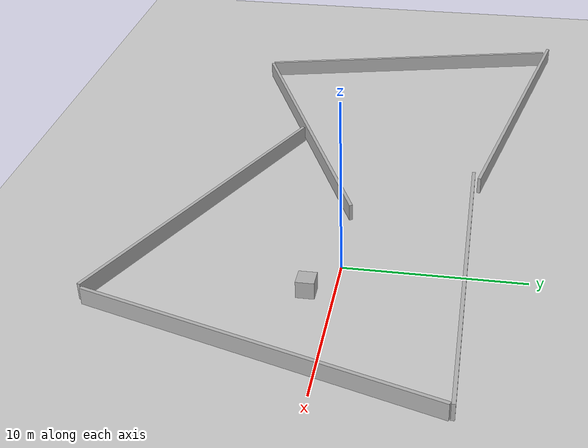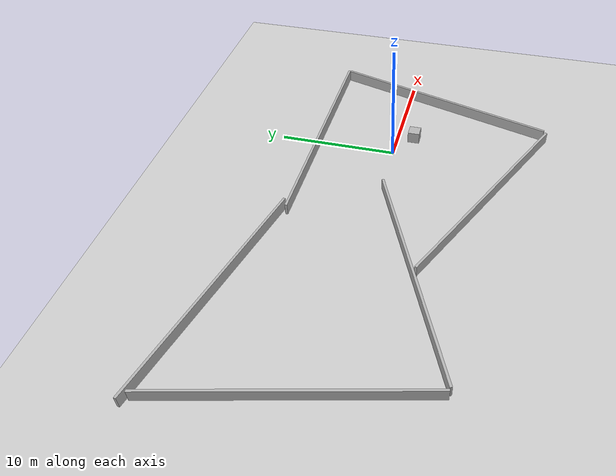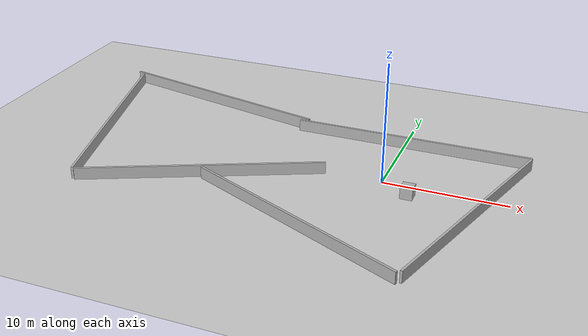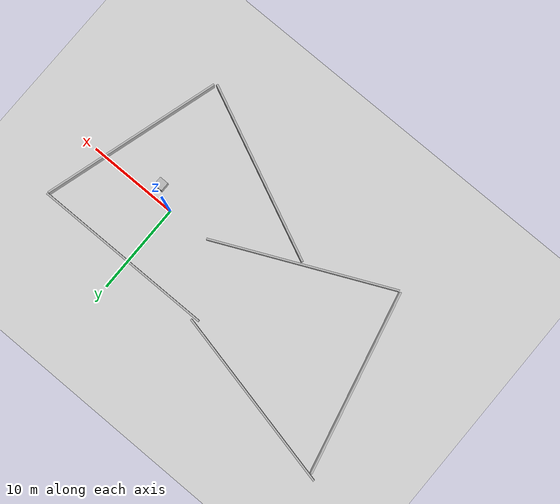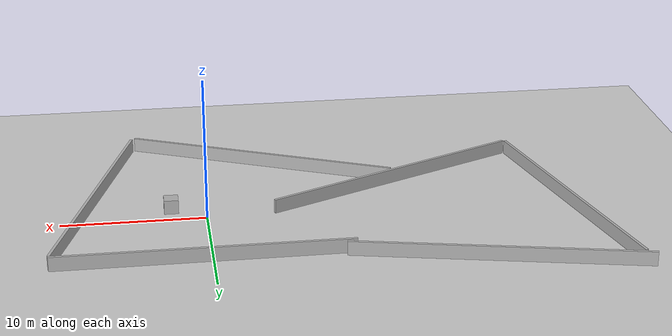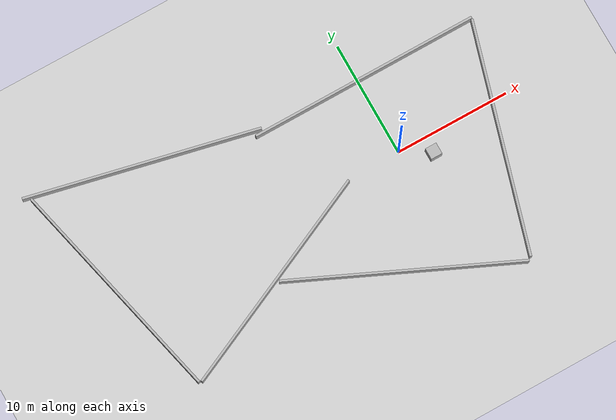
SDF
<sdf version='1.9'>
  <world name='simpel_world'>
    <physics name='1ms' type='ignored'>
      <max_step_size>0.001</max_step_size>
      <real_time_factor>1</real_time_factor>
      <real_time_update_rate>1000</real_time_update_rate>
    </physics>
    <plugin name='ignition::gazebo::systems::Physics' filename='libignition-gazebo-physics-system.so'/>
    <plugin name='ignition::gazebo::systems::UserCommands' filename='libignition-gazebo-user-commands-system.so'/>
    <plugin name='ignition::gazebo::systems::SceneBroadcaster' filename='libignition-gazebo-scene-broadcaster-system.so'/>
    <plugin name='ignition::gazebo::systems::Sensors' filename='libignition-gazebo-sensors-system.so'>
      <render_engine>ogre2</render_engine>
    </plugin>
    <plugin filename="libignition-gazebo-imu-system.so" name="ignition::gazebo::systems::Imu"/>
    <gravity>0 0 -9.82</gravity>
    <magnetic_field>6e-06 2.3e-05 -4.2e-05</magnetic_field>
    <atmosphere type='adiabatic'/>
    <scene>
      <ambient>0.4 0.4 0.4 1</ambient>
      <background>0.7 0.7 0.7 1</background>
      <shadows>true</shadows>
    </scene>
    <model name='ground_plane'>
      <static>true</static>
      <link name='link'>
        <collision name='collision'>
          <geometry>
            <plane>
              <normal>0 0 1</normal>
              <size>1 1</size>
            </plane>
          </geometry>
          <surface>
            <friction>
              <ode/>
            </friction>
            <bounce/>
            <contact/>
          </surface>
        </collision>
        <visual name='visual'>
          <geometry>
            <plane>
              <normal>0 0 1</normal>
              <size>100 100</size>
            </plane>
          </geometry>
          <material>
            <ambient>0.8 0.8 0.8 1</ambient>
            <diffuse>0.8 0.8 0.8 1</diffuse>
            <specular>0.8 0.8 0.8 1</specular>
          </material>
        </visual>
        <pose>0 0 0 0 -0 0</pose>
        <inertial>
          <pose>0 0 0 0 -0 0</pose>
          <mass>1</mass>
          <inertia>
            <ixx>1</ixx>
            <ixy>0</ixy>
            <ixz>0</ixz>
            <iyy>1</iyy>
            <iyz>0</iyz>
            <izz>1</izz>
          </inertia>
        </inertial>
        <enable_wind>false</enable_wind>
      </link>
      <pose>0 0 0 0 -0 0</pose>
      <self_collide>false</self_collide>
    </model>
    <model name='box'>
      <pose>0.57278 6.63201 0.499982 6.9e-05 -0 0.002202</pose>
      <link name='box_link'>
        <collision name='box_collision'>
          <geometry>
            <box>
              <size>20 0.2 1</size>
            </box>
          </geometry>
          <surface>
            <friction>
              <ode/>
            </friction>
            <bounce/>
            <contact/>
          </surface>
        </collision>
        <visual name='box_visual'>
          <geometry>
            <box>
              <size>20 0.2 1</size>
            </box>
          </geometry>
          <material>
            <ambient>0.3 0.3 0.3 1</ambient>
            <diffuse>0.7 0.7 0.7 1</diffuse>
            <specular>1 1 1 1</specular>
          </material>
        </visual>
        <pose>0 0 0 0 -0 0</pose>
        <enable_wind>false</enable_wind>
      </link>
      <static>false</static>
      <self_collide>false</self_collide>
    </model>
    <model name='box_1'>
      <pose>7.7251 -3.08527 0.499982 4e-06 -0 1.28623</pose>
      <link name='box_link'>
        <collision name='box_collision'>
          <geometry>
            <box>
              <size>20 0.2 1</size>
            </box>
          </geometry>
          <surface>
            <friction>
              <ode/>
            </friction>
            <bounce/>
            <contact/>
          </surface>
        </collision>
        <visual name='box_visual'>
          <geometry>
            <box>
              <size>20 0.2 1</size>
            </box>
          </geometry>
          <material>
            <ambient>0.3 0.3 0.3 1</ambient>
            <diffuse>0.7 0.7 0.7 1</diffuse>
            <specular>1 1 1 1</specular>
          </material>
        </visual>
        <pose>0 0 0 0 -0 0</pose>
        <enable_wind>false</enable_wind>
      </link>
      <static>false</static>
      <self_collide>false</self_collide>
    </model>
    <model name='box_2'>
      <pose>-4.43754 -8.74696 0.499519 0.005704 0 -0.427375</pose>
      <link name='box_link'>
        <collision name='box_collision'>
          <geometry>
            <box>
              <size>20 0.2 1</size>
            </box>
          </geometry>
          <surface>
            <friction>
              <ode/>
            </friction>
            <bounce/>
            <contact/>
          </surface>
        </collision>
        <visual name='box_visual'>
          <geometry>
            <box>
              <size>20 0.2 1</size>
            </box>
          </geometry>
          <material>
            <ambient>0.3 0.3 0.3 1</ambient>
            <diffuse>0.7 0.7 0.7 1</diffuse>
            <specular>1 1 1 1</specular>
          </material>
        </visual>
        <pose>0 0 0 0 -0 0</pose>
        <enable_wind>false</enable_wind>
      </link>
      <static>false</static>
      <self_collide>false</self_collide>
    </model>
    <model name='box_2_1'>
      <pose>-13.7463 -4.40517 0.500425 -0.004671 0 0.435745</pose>
      <link name='box_link'>
        <collision name='box_collision'>
          <geometry>
            <box>
              <size>20 0.2 1</size>
            </box>
          </geometry>
          <surface>
            <friction>
              <ode/>
            </friction>
            <bounce/>
            <contact/>
          </surface>
        </collision>
        <visual name='box_visual'>
          <geometry>
            <box>
              <size>20 0.2 1</size>
            </box>
          </geometry>
          <material>
            <ambient>0.3 0.3 0.3 1</ambient>
            <diffuse>0.7 0.7 0.7 1</diffuse>
            <specular>1 1 1 1</specular>
          </material>
        </visual>
        <pose>0 0 0 0 -0 0</pose>
        <enable_wind>false</enable_wind>
      </link>
      <static>false</static>
      <self_collide>false</self_collide>
    </model>
    <model name='box_1_1'>
      <pose>-25.2965 1.16216 0.499958 -6.7e-05 0 1.80188</pose>
      <link name='box_link'>
        <collision name='box_collision'>
          <geometry>
            <box>
              <size>20 0.2 1</size>
            </box>
          </geometry>
          <surface>
            <friction>
              <ode/>
            </friction>
            <bounce/>
            <contact/>
          </surface>
        </collision>
        <visual name='box_visual'>
          <geometry>
            <box>
              <size>20 0.2 1</size>
            </box>
          </geometry>
          <material>
            <ambient>0.3 0.3 0.3 1</ambient>
            <diffuse>0.7 0.7 0.7 1</diffuse>
            <specular>1 1 1 1</specular>
          </material>
        </visual>
        <pose>0 0 0 0 -0 0</pose>
        <enable_wind>false</enable_wind>
      </link>
      <static>false</static>
      <self_collide>false</self_collide>
    </model>
    <model name='box_3'>
      <pose>-18.4606 9.11978 0.499863 -0.00096 2.1e-05 -0.217339</pose>
      <link name='box_link'>
        <collision name='box_collision'>
          <geometry>
            <box>
              <size>20 0.2 1</size>
            </box>
          </geometry>
          <surface>
            <friction>
              <ode/>
            </friction>
            <bounce/>
            <contact/>
          </surface>
        </collision>
        <visual name='box_visual'>
          <geometry>
            <box>
              <size>20 0.2 1</size>
            </box>
          </geometry>
          <material>
            <ambient>0.3 0.3 0.3 1</ambient>
            <diffuse>0.7 0.7 0.7 1</diffuse>
            <specular>1 1 1 1</specular>
          </material>
        </visual>
        <pose>0 0 0 0 -0 0</pose>
        <enable_wind>false</enable_wind>
      </link>
      <static>false</static>
      <self_collide>false</self_collide>
    </model>
    <model name='box_0'>
      <pose>2.41406 -1.45843 0.5 0 -0 0</pose>
      <link name='box_link'>
        <inertial>
          <inertia>
            <ixx>0.16666</ixx>
            <ixy>0</ixy>
            <ixz>0</ixz>
            <iyy>0.16666</iyy>
            <iyz>0</iyz>
            <izz>0.16666</izz>
          </inertia>
          <mass>1</mass>
          <pose>0 0 0 0 -0 0</pose>
        </inertial>
        <collision name='box_collision'>
          <geometry>
            <box>
              <size>1 1 1</size>
            </box>
          </geometry>
          <surface>
            <friction>
              <ode/>
            </friction>
            <bounce/>
            <contact/>
          </surface>
        </collision>
        <visual name='box_visual'>
          <geometry>
            <box>
              <size>1 1 1</size>
            </box>
          </geometry>
          <material>
            <ambient>0.3 0.3 0.3 1</ambient>
            <diffuse>0.7 0.7 0.7 1</diffuse>
            <specular>1 1 1 1</specular>
          </material>
        </visual>
        <pose>0 0 0 0 -0 0</pose>
        <enable_wind>false</enable_wind>
      </link>
      <static>false</static>
      <self_collide>false</self_collide>
    </model>
    <light name='sun' type='directional'>
      <pose>0 0 10 0 -0 0</pose>
      <cast_shadows>true</cast_shadows>
      <intensity>1</intensity>
      <direction>-0.5 0.1 -0.9</direction>
      <diffuse>0.8 0.8 0.8 1</diffuse>
      <specular>0.2 0.2 0.2 1</specular>
      <attenuation>
        <range>1000</range>
        <linear>0.01</linear>
        <constant>0.90000000000000002</constant>
        <quadratic>0.001</quadratic>
      </attenuation>
      <spot>
        <inner_angle>0</inner_angle>
        <outer_angle>0</outer_angle>
        <falloff>0</falloff>
      </spot>
    </light>
  </world>
</sdf>
